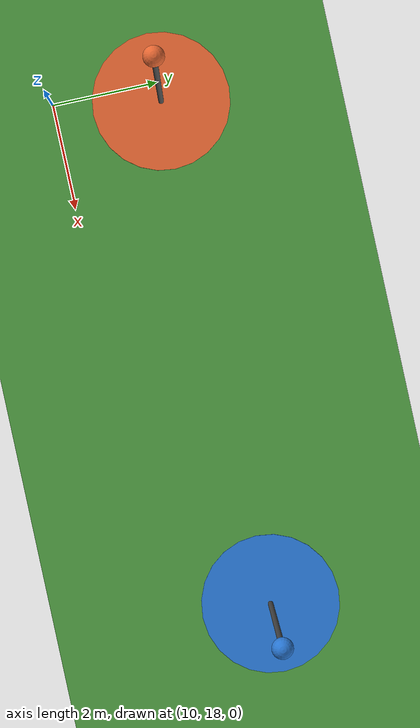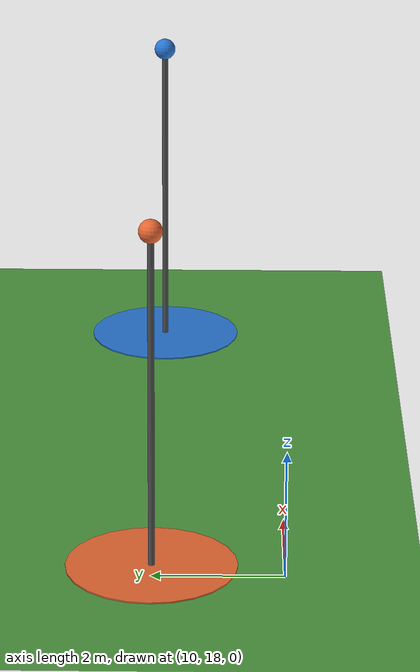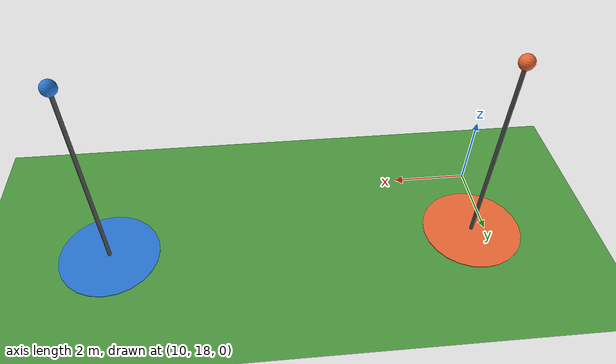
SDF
<?xml version="1.0" ?>
<!-- Relay stations 2 and 3 of the seed-1 run, scaled 1:8, centred away from the world origin. -->
<sdf version="1.6">
  <world name="default">
    <scene>
      <ambient>0.5 0.5 0.5 1</ambient>
      <background>0.62 0.78 0.95 1</background>
      <sky><clouds><speed>2</speed></clouds></sky>
      <shadows>true</shadows>
      <grid>false</grid>
      <origin_visual>false</origin_visual>
    </scene>
    <include><uri>model://sun</uri></include>

    <model name="grass">
      <static>true</static>
      <link name="l">
        <collision name="c"><geometry><plane><normal>0 0 1</normal><size>400 400</size></plane></geometry></collision>
        <visual name="v">
          <cast_shadows>false</cast_shadows>
          <geometry><plane><normal>0 0 1</normal><size>400 400</size></plane></geometry>
          <material><script><uri>file://media/materials/scripts/gazebo.material</uri><name>Gazebo/Grass</name></script></material>
        </visual>
      </link>
    </model>

    <!-- station 2 (orange) at (10.36, 20), station 3 (blue) at (20, 20); relay altitude 6.4 m -->
    <model name="station_2">
      <static>true</static>
      <pose>10.36 20 0 0 0 0</pose>
      <link name="l">
        <visual name="disc"><pose>0 0 0.01 0 0 0</pose><geometry><cylinder><radius>1.3</radius><length>0.02</length></cylinder></geometry>
          <material><ambient>0.92 0.41 0.2 1</ambient><diffuse>0.92 0.41 0.2 1</diffuse></material></visual>
        <visual name="pole"><pose>0 0 2.6 0 0 0</pose><geometry><cylinder><radius>0.05</radius><length>5.2</length></cylinder></geometry>
          <material><ambient>0.3 0.3 0.3 1</ambient><diffuse>0.3 0.3 0.3 1</diffuse></material></visual>
        <visual name="top"><pose>0 0 5.3 0 0 0</pose><geometry><sphere><radius>0.18</radius></sphere></geometry>
          <material><ambient>0.92 0.41 0.2 1</ambient><diffuse>0.92 0.41 0.2 1</diffuse></material></visual>
      </link>
    </model>
    <model name="station_3">
      <static>true</static>
      <pose>20 20 0 0 0 0</pose>
      <link name="l">
        <visual name="disc"><pose>0 0 0.01 0 0 0</pose><geometry><cylinder><radius>1.3</radius><length>0.02</length></cylinder></geometry>
          <material><ambient>0.16 0.47 0.84 1</ambient><diffuse>0.16 0.47 0.84 1</diffuse></material></visual>
        <visual name="pole"><pose>0 0 2.6 0 0 0</pose><geometry><cylinder><radius>0.05</radius><length>5.2</length></cylinder></geometry>
          <material><ambient>0.3 0.3 0.3 1</ambient><diffuse>0.3 0.3 0.3 1</diffuse></material></visual>
        <visual name="top"><pose>0 0 5.3 0 0 0</pose><geometry><sphere><radius>0.18</radius></sphere></geometry>
          <material><ambient>0.16 0.47 0.84 1</ambient><diffuse>0.16 0.47 0.84 1</diffuse></material></visual>
      </link>
    </model>

    <gui fullscreen="0">
      <camera name="user_camera">
        <!-- 7.5 m south of station 3, below relay height looking up, so drones show against the sky -->
        <pose>22 12.5 4.0 0 -0.3 1.5708</pose>
        <view_controller>orbit</view_controller>
      </camera>
    </gui>

    <physics name="default_physics" default="0" type="ode">
      <gravity>0 0 -9.8066</gravity>
      <ode>
        <solver><type>quick</type><iters>10</iters><sor>1.3</sor><use_dynamic_moi_rescaling>0</use_dynamic_moi_rescaling></solver>
        <constraints><cfm>0</cfm><erp>0.2</erp><contact_max_correcting_vel>100</contact_max_correcting_vel><contact_surface_layer>0.001</contact_surface_layer></constraints>
      </ode>
      <max_step_size>0.004</max_step_size>
      <real_time_factor>1</real_time_factor>
      <real_time_update_rate>250</real_time_update_rate>
      <magnetic_field>6.0e-6 2.3e-5 -4.2e-5</magnetic_field>
    </physics>
  </world>
</sdf>
